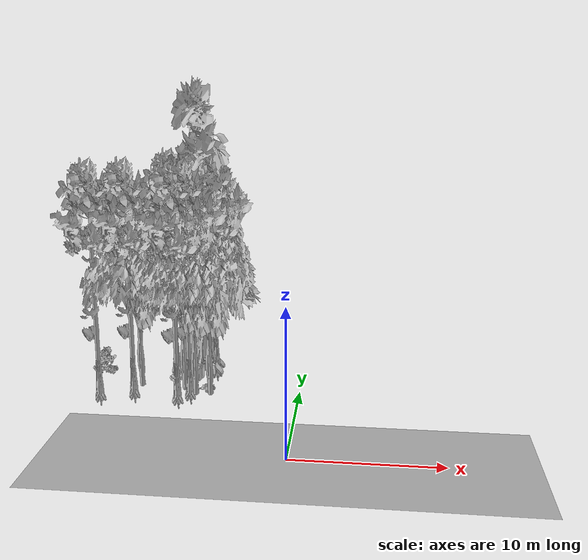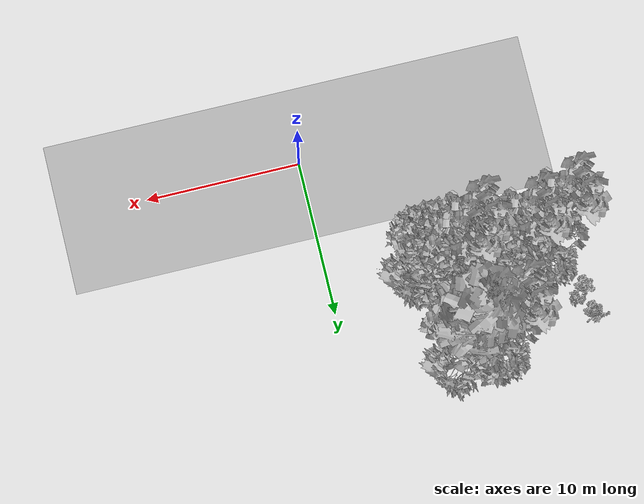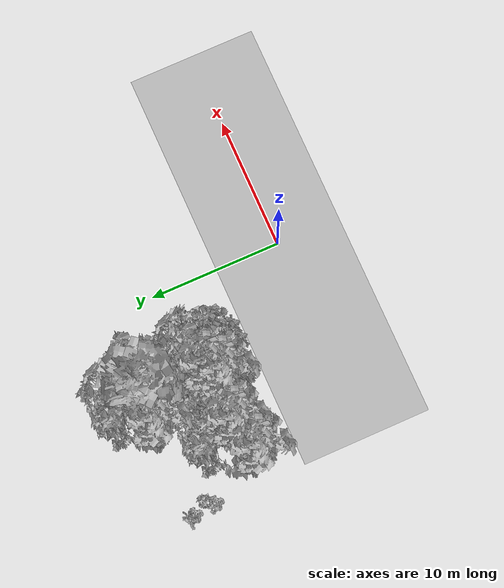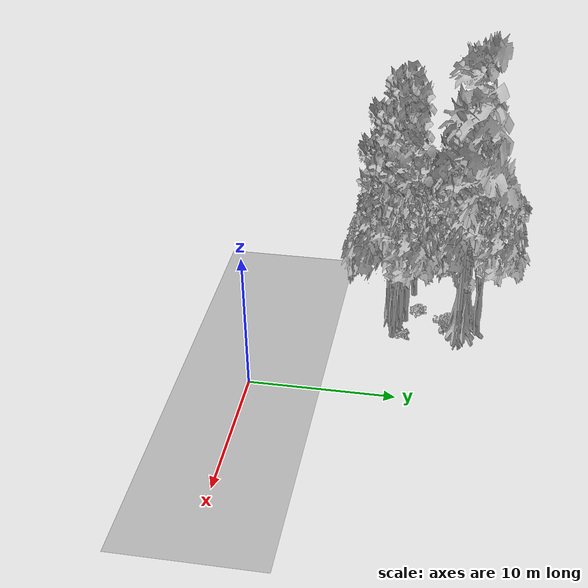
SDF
<sdf version="1.7">
 <world name="default">
  <model name="ground_plane">
   <static>1</static>
   <link name="link">
    <collision name="collision">
     <geometry><plane><normal>0 0 1</normal><size>100 100</size></plane></geometry>
     <surface><contact><ode><min_depth>0.01</min_depth><max_vel>0</max_vel></ode></contact></surface>
    </collision>
    <visual name="grass">
     <cast_shadows>0</cast_shadows>
     <geometry>
      <mesh>
       <scale>0.5814285714285714 0.18142857142857144 0.1</scale>
       <uri>file://grass_plane/meshes/grass_plane.dae</uri>
      </mesh>
     </geometry>
    </visual>
   </link>
  </model>
  <model name="Tree 38">
   <static>1</static>
   <pose>-8.661135999150467 9.714993716716812 0 1.57079 -0 0</pose>
   <link name="link">
    <collision name="collision">
     <geometry><mesh><scale>3.5 5 3.5</scale><uri>model://tree_2/meshes/tree_2.obj</uri></mesh></geometry>
    </collision>
    <visual name="visual">
     <geometry><mesh><scale>3.5 5 3.5</scale><uri>model://tree_2/meshes/tree_2.obj</uri></mesh></geometry>
    </visual>
   </link>
  </model>
  <model name="Tree 73">
   <static>1</static>
   <pose>-7.825205132838775 13.870935234682438 0 1.57079 -0 0</pose>
   <link name="link">
    <collision name="collision">
     <geometry><mesh><scale>3.5 5 3.5</scale><uri>model://tree_4/meshes/tree_4.obj</uri></mesh></geometry>
    </collision>
    <visual name="visual">
     <geometry><mesh><scale>3.5 5 3.5</scale><uri>model://tree_4/meshes/tree_4.obj</uri></mesh></geometry>
    </visual>
   </link>
  </model>
  <model name="Tree 85">
   <static>1</static>
   <pose>-7.6693870262354125 8.905525942684463 0 1.57079 -0 0</pose>
   <link name="link">
    <collision name="collision">
     <geometry><mesh><scale>3.5 5 3.5</scale><uri>model://tree_2/meshes/tree_2.obj</uri></mesh></geometry>
    </collision>
    <visual name="visual">
     <geometry><mesh><scale>3.5 5 3.5</scale><uri>model://tree_2/meshes/tree_2.obj</uri></mesh></geometry>
    </visual>
   </link>
  </model>
  <model name="Tree 102">
   <static>1</static>
   <pose>-7.780043052248068 9.377313148151273 0 1.57079 -0 0</pose>
   <link name="link">
    <collision name="collision">
     <geometry><mesh><scale>3.5 5 3.5</scale><uri>model://tree_2/meshes/tree_2.obj</uri></mesh></geometry>
    </collision>
    <visual name="visual">
     <geometry><mesh><scale>3.5 5 3.5</scale><uri>model://tree_2/meshes/tree_2.obj</uri></mesh></geometry>
    </visual>
   </link>
  </model>
  <model name="Tree 105">
   <static>1</static>
   <pose>-6.923770056317352 13.66445981256975 0 1.57079 -0 0</pose>
   <link name="link">
    <collision name="collision">
     <geometry><mesh><scale>3.5 5 3.5</scale><uri>model://tree_9/meshes/tree_9.obj</uri></mesh></geometry>
    </collision>
    <visual name="visual">
     <geometry><mesh><scale>3.5 5 3.5</scale><uri>model://tree_9/meshes/tree_9.obj</uri></mesh></geometry>
    </visual>
   </link>
  </model>
  <model name="Tree 123">
   <static>1</static>
   <pose>-12.302724702431362 9.084543903745406 0 1.57079 -0 0</pose>
   <link name="link">
    <collision name="collision">
     <geometry><mesh><scale>3.5 5 3.5</scale><uri>model://tree_9/meshes/tree_9.obj</uri></mesh></geometry>
    </collision>
    <visual name="visual">
     <geometry><mesh><scale>3.5 5 3.5</scale><uri>model://tree_9/meshes/tree_9.obj</uri></mesh></geometry>
    </visual>
   </link>
  </model>
  <model name="Tree 155">
   <static>1</static>
   <pose>-12.008764128269938 10.035652353197143 0 1.57079 -0 0</pose>
   <link name="link">
    <collision name="collision">
     <geometry><mesh><scale>3.5 5 3.5</scale><uri>model://tree_2/meshes/tree_2.obj</uri></mesh></geometry>
    </collision>
    <visual name="visual">
     <geometry><mesh><scale>3.5 5 3.5</scale><uri>model://tree_2/meshes/tree_2.obj</uri></mesh></geometry>
    </visual>
   </link>
  </model>
  <model name="Tree 164">
   <static>1</static>
   <pose>-6.607665664025525 8.995713626223154 0 1.57079 -0 0</pose>
   <link name="link">
    <collision name="collision">
     <geometry><mesh><scale>3.5 5 3.5</scale><uri>model://tree_2/meshes/tree_2.obj</uri></mesh></geometry>
    </collision>
    <visual name="visual">
     <geometry><mesh><scale>3.5 5 3.5</scale><uri>model://tree_2/meshes/tree_2.obj</uri></mesh></geometry>
    </visual>
   </link>
  </model>
  <model name="Tree 199">
   <static>1</static>
   <pose>-8.8708301332953 8.453153266534002 0 1.57079 -0 0</pose>
   <link name="link">
    <collision name="collision">
     <geometry><mesh><scale>3.5 5 3.5</scale><uri>model://tree_9/meshes/tree_9.obj</uri></mesh></geometry>
    </collision>
    <visual name="visual">
     <geometry><mesh><scale>3.5 5 3.5</scale><uri>model://tree_9/meshes/tree_9.obj</uri></mesh></geometry>
    </visual>
   </link>
  </model>
  <model name="Tree 253">
   <static>1</static>
   <pose>-7.785402373170932 14.947424885810264 0 1.57079 -0 0</pose>
   <link name="link">
    <collision name="collision">
     <geometry><mesh><scale>3.5 5 3.5</scale><uri>model://tree_2/meshes/tree_2.obj</uri></mesh></geometry>
    </collision>
    <visual name="visual">
     <geometry><mesh><scale>3.5 5 3.5</scale><uri>model://tree_2/meshes/tree_2.obj</uri></mesh></geometry>
    </visual>
   </link>
  </model>
  <model name="Tree 285">
   <static>1</static>
   <pose>-8.121718100183514 9.295021993035384 0 1.57079 -0 0</pose>
   <link name="link">
    <collision name="collision">
     <geometry><mesh><scale>3.5 5 3.5</scale><uri>model://tree_9/meshes/tree_9.obj</uri></mesh></geometry>
    </collision>
    <visual name="visual">
     <geometry><mesh><scale>3.5 5 3.5</scale><uri>model://tree_9/meshes/tree_9.obj</uri></mesh></geometry>
    </visual>
   </link>
  </model>
  <model name="Tree 341">
   <static>1</static>
   <pose>-10.22241721046585 13.977660883159746 0 1.57079 -0 0</pose>
   <link name="link">
    <collision name="collision">
     <geometry><mesh><scale>3.5 5 3.5</scale><uri>model://tree_9/meshes/tree_9.obj</uri></mesh></geometry>
    </collision>
    <visual name="visual">
     <geometry><mesh><scale>3.5 5 3.5</scale><uri>model://tree_9/meshes/tree_9.obj</uri></mesh></geometry>
    </visual>
   </link>
  </model>
  <model name="Tree 432">
   <static>1</static>
   <pose>-14.685285527751219 8.399096844228932 0 1.57079 -0 0</pose>
   <link name="link">
    <collision name="collision">
     <geometry><mesh><scale>3.5 5 3.5</scale><uri>model://tree_9/meshes/tree_9.obj</uri></mesh></geometry>
    </collision>
    <visual name="visual">
     <geometry><mesh><scale>3.5 5 3.5</scale><uri>model://tree_9/meshes/tree_9.obj</uri></mesh></geometry>
    </visual>
   </link>
  </model>
  <model name="Bush 13">
   <static>1</static>
   <pose>-15.878167337319674 13.682719571289855 0 1.57079 -0 0</pose>
   <link name="link">
    <collision name="collision">
     <geometry><mesh><scale>2 2 2</scale><uri>model://bush_3/meshes/bush_3.obj</uri></mesh></geometry>
     <surface><contact><collide_without_contact>false</collide_without_contact></contact></surface>
    </collision>
    <visual name="visual">
     <geometry><mesh><scale>2 2 2</scale><uri>model://bush_3/meshes/bush_3.obj</uri></mesh></geometry>
    </visual>
   </link>
  </model>
  <model name="Bush 25">
   <static>1</static>
   <pose>-8.554365514824639 12.900486097185858 0 1.57079 -0 0</pose>
   <link name="link">
    <collision name="collision">
     <geometry><mesh><scale>2 2 2</scale><uri>model://bush_3/meshes/bush_3.obj</uri></mesh></geometry>
     <surface><contact><collide_without_contact>false</collide_without_contact></contact></surface>
    </collision>
    <visual name="visual">
     <geometry><mesh><scale>2 2 2</scale><uri>model://bush_3/meshes/bush_3.obj</uri></mesh></geometry>
    </visual>
   </link>
  </model>
  <model name="Bush 62">
   <static>1</static>
   <pose>-15.705944135474617 11.956256505652352 0 1.57079 -0 0</pose>
   <link name="link">
    <collision name="collision">
     <geometry><mesh><scale>2 2 2</scale><uri>model://bush_3/meshes/bush_3.obj</uri></mesh></geometry>
     <surface><contact><collide_without_contact>false</collide_without_contact></contact></surface>
    </collision>
    <visual name="visual">
     <geometry><mesh><scale>2 2 2</scale><uri>model://bush_3/meshes/bush_3.obj</uri></mesh></geometry>
    </visual>
   </link>
  </model>
  <model name="Bush 83">
   <static>1</static>
   <pose>-9.2976198968856 10.685632422325806 0 1.57079 -0 0</pose>
   <link name="link">
    <collision name="collision">
     <geometry><mesh><scale>2 2 2</scale><uri>model://bush_3/meshes/bush_3.obj</uri></mesh></geometry>
     <surface><contact><collide_without_contact>false</collide_without_contact></contact></surface>
    </collision>
    <visual name="visual">
     <geometry><mesh><scale>2 2 2</scale><uri>model://bush_3/meshes/bush_3.obj</uri></mesh></geometry>
    </visual>
   </link>
  </model>
  <model name="Bush 104">
   <static>1</static>
   <pose>-15.211560999248874 12.570185347607755 0 1.57079 -0 0</pose>
   <link name="link">
    <collision name="collision">
     <geometry><mesh><scale>2 2 2</scale><uri>model://bush_2/meshes/bush_2.obj</uri></mesh></geometry>
     <surface><contact><collide_without_contact>false</collide_without_contact></contact></surface>
    </collision>
    <visual name="visual">
     <geometry><mesh><scale>2 2 2</scale><uri>model://bush_2/meshes/bush_2.obj</uri></mesh></geometry>
    </visual>
   </link>
  </model>
  <model name="Bush 153">
   <static>1</static>
   <pose>-6.862921975749671 9.737000039935527 0 1.57079 -0 0</pose>
   <link name="link">
    <collision name="collision">
     <geometry><mesh><scale>2 2 2</scale><uri>model://bush_2/meshes/bush_2.obj</uri></mesh></geometry>
     <surface><contact><collide_without_contact>false</collide_without_contact></contact></surface>
    </collision>
    <visual name="visual">
     <geometry><mesh><scale>2 2 2</scale><uri>model://bush_2/meshes/bush_2.obj</uri></mesh></geometry>
    </visual>
   </link>
  </model>
  <model name="Bush 162">
   <static>1</static>
   <pose>-8.745114430811697 14.861802351580522 0 1.57079 -0 0</pose>
   <link name="link">
    <collision name="collision">
     <geometry><mesh><scale>2 2 2</scale><uri>model://bush_5/meshes/bush_5.obj</uri></mesh></geometry>
     <surface><contact><collide_without_contact>false</collide_without_contact></contact></surface>
    </collision>
    <visual name="visual">
     <geometry><mesh><scale>2 2 2</scale><uri>model://bush_5/meshes/bush_5.obj</uri></mesh></geometry>
    </visual>
   </link>
  </model>
  <model name="Bush 220">
   <static>1</static>
   <pose>-16.076248761044134 13.940759053808812 0 1.57079 -0 0</pose>
   <link name="link">
    <collision name="collision">
     <geometry><mesh><scale>2 2 2</scale><uri>model://bush_4/meshes/bush_4.obj</uri></mesh></geometry>
     <surface><contact><collide_without_contact>false</collide_without_contact></contact></surface>
    </collision>
    <visual name="visual">
     <geometry><mesh><scale>2 2 2</scale><uri>model://bush_4/meshes/bush_4.obj</uri></mesh></geometry>
    </visual>
   </link>
  </model>
  <model name="Bush 256">
   <static>1</static>
   <pose>-7.289874846180886 12.627855528807945 0 1.57079 -0 0</pose>
   <link name="link">
    <collision name="collision">
     <geometry><mesh><scale>2 2 2</scale><uri>model://bush_5/meshes/bush_5.obj</uri></mesh></geometry>
     <surface><contact><collide_without_contact>false</collide_without_contact></contact></surface>
    </collision>
    <visual name="visual">
     <geometry><mesh><scale>2 2 2</scale><uri>model://bush_5/meshes/bush_5.obj</uri></mesh></geometry>
    </visual>
   </link>
  </model>
 </world>
</sdf>
